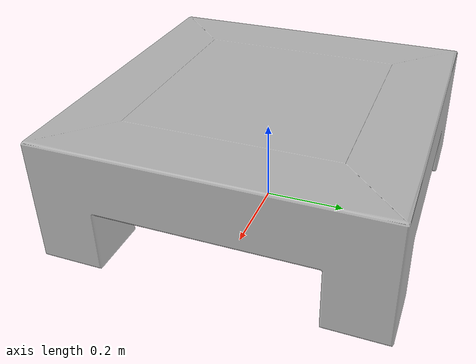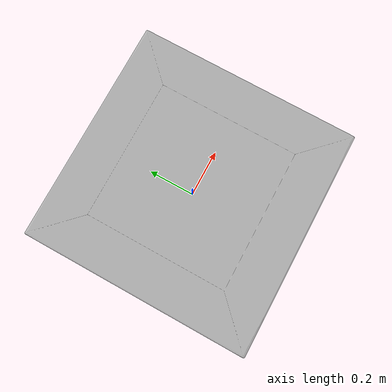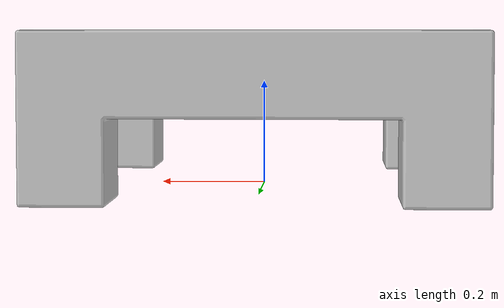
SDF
<?xml version='1.0'?>
<sdf version='1.4'>
  <model name='555'>
    <pose>0 0 0 0 0 0</pose>
    <static>true</static>
    <link name='link'>
      <collision name='collision'>
        <pose>0 0 0 0 0 0</pose>
        <geometry>
          <box>
            <size>0.8 0.8 2</size>
          </box>
        </geometry>
      </collision>
      <visual name='visual'>
        <pose>0 0 0 0 0 0</pose>
        <geometry>
          <mesh><uri>model://555/555.dae</uri></mesh>
        </geometry>
      </visual>
    </link>
  </model>
</sdf>
